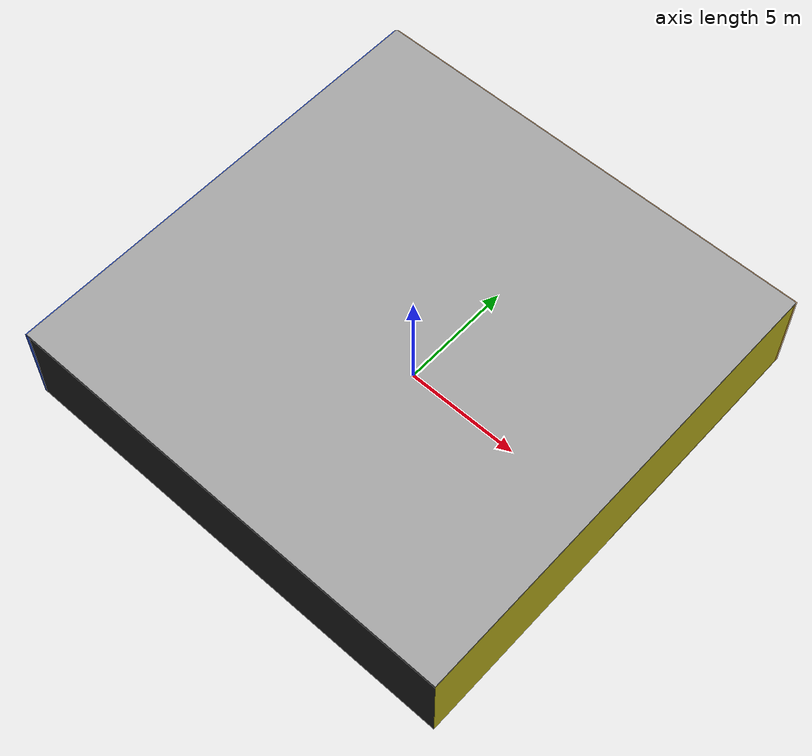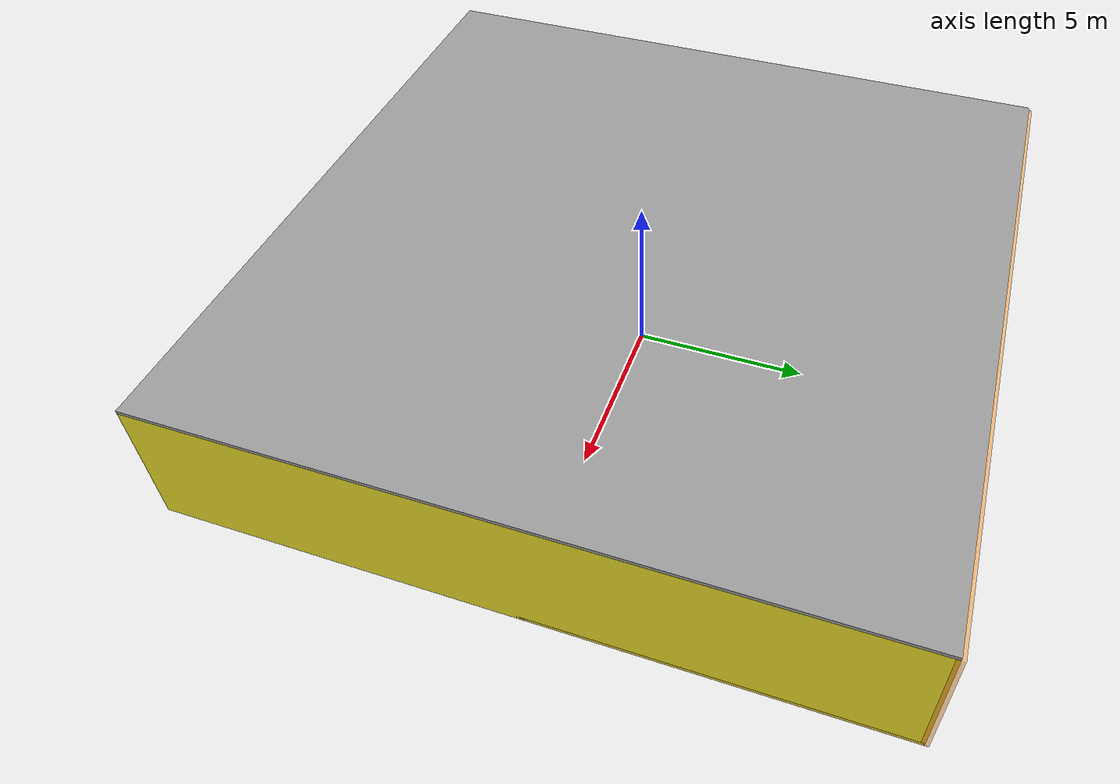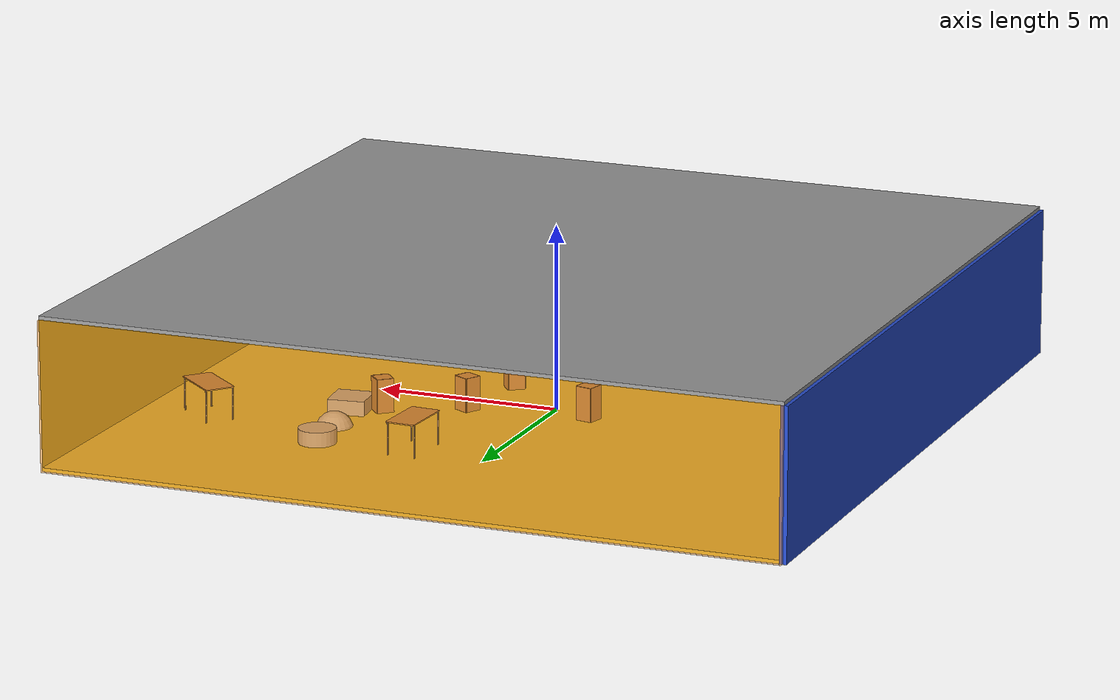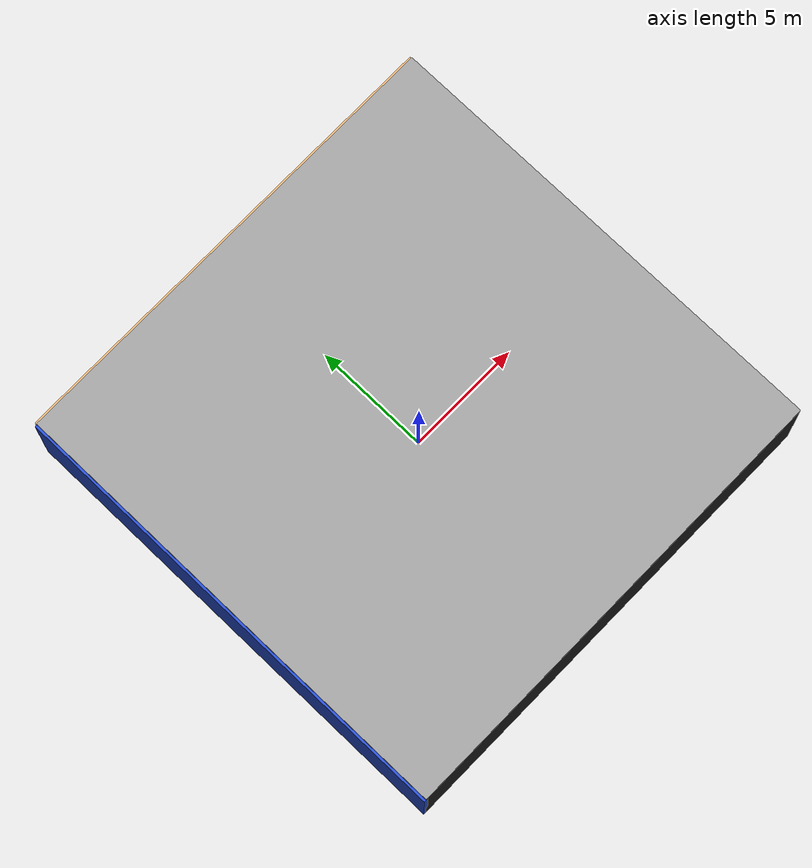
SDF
<sdf version="1.4">
 <world name="default">
  <physics type="ode">
   <max_step_size>0.001</max_step_size>
   <real_time_factor>1</real_time_factor>
   <real_time_update_rate>1000</real_time_update_rate>
   <gravity>0 0 -9.8</gravity>
  </physics>
  <scene><ambient>0.4 0.4 0.4 1</ambient><background>0.7 0.7 0.7 1</background><shadows>1</shadows></scene>
  <model name="Surrounding">
   <static>1</static>
   <link name="Ceiling">
    <collision name="Ceiling_Collision"><geometry><box><size>20 20 0.1</size></box></geometry></collision>
    <visual name="Ceiling_Visual">
     <geometry><box><size>20 20 0.1</size></box></geometry>
     <material>
      <script><uri>file://media/materials/scripts/gazebo.material</uri><name>Gazebo/Grey</name></script>
     </material>
    </visual>
    <pose>0 0 4.05 0 0 0</pose>
   </link>
   <link name="Wall_South">
    <collision name="Wall_South_Collision">
     <geometry><box><size>20 0 4</size></box></geometry>
     <pose>0 0 2 0 -0 0</pose>
    </collision>
    <visual name="Wall_South_Visual">
     <pose>0 0 2 0 -0 0</pose>
     <geometry><box><size>20 0 4</size></box></geometry>
     <material>
      <script><uri>file://media/materials/scripts/gazebo.material</uri><name>Gazebo/FlatBlack</name></script>
     </material>
    </visual>
    <velocity_decay><linear>0</linear><angular>0</angular></velocity_decay>
    <pose>0 -10 0 0 -0 0</pose>
   </link>
   <link name="Wall_East">
    <collision name="Wall_21_Collision">
     <geometry><box><size>20 0 4</size></box></geometry>
     <pose>0 0 2 0 -0 0</pose>
    </collision>
    <visual name="Wall_21_Visual">
     <pose>0 0 2 0 -0 0</pose>
     <geometry><box><size>20 0 4</size></box></geometry>
     <material>
      <script><uri>file://media/materials/scripts/gazebo.material</uri><name>Gazebo/Yellow</name></script>
     </material>
    </visual>
    <velocity_decay><linear>0</linear><angular>0</angular></velocity_decay>
    <pose>10 0 0 0 -0 1.5708</pose>
   </link>
   <link name="Wall_North">
    <collision name="Wall_22_Collision">
     <geometry><box><size>20 0.2 4</size></box></geometry>
     <pose>0 0 2 0 -0 0</pose>
    </collision>
    <visual name="Wall_22_Visual">
     <pose>0 0 2 0 -0 0</pose>
     <geometry><box><size>20 0.2 4</size></box></geometry>
     <material>
      <script>
       <uri>file://media/materials/scripts/gazebo.material</uri>
       <name>Gazebo/OrangeTransparent</name>
      </script>
     </material>
    </visual>
    <velocity_decay><linear>0</linear><angular>0</angular></velocity_decay>
    <pose>0 10 0 0 -0 0</pose>
   </link>
   <link name="Wall_West">
    <collision name="Wall_23_Collision">
     <geometry><box><size>20 0.2 4</size></box></geometry>
     <pose>0 0 2 0 -0 0</pose>
    </collision>
    <visual name="Wall_23_Visual">
     <pose>0 0 2 0 -0 0</pose>
     <geometry><box><size>20 0.2 4</size></box></geometry>
     <material>
      <script><uri>file://media/materials/scripts/gazebo.material</uri><name>Gazebo/BlueLaser</name></script>
     </material>
    </visual>
    <velocity_decay><linear>0</linear><angular>0</angular></velocity_decay>
    <pose>-10 0 0 0 0 -1.5708</pose>
   </link>
   <link name="Ground_link">
    <collision name="collision">
     <pose>0 0 .05 0 -0 0</pose>
     <geometry><box><size>20 20 0.1</size></box></geometry>
    </collision>
    <visual name="visual">
     <pose>0 0 .05 0 -0 0</pose>
     <geometry><box><size>20 20 0.1</size></box></geometry>
     <material>
      <script><uri>file://media/materials/scripts/gazebo.material</uri><name>Gazebo/ZincYellow</name></script>
     </material>
    </visual>
   </link>
   <static>1</static>
  </model>
  <spherical_coordinates>
   <surface_model>EARTH_WGS84</surface_model>
   <latitude_deg>0</latitude_deg>
   <longitude_deg>0</longitude_deg>
   <elevation>0</elevation>
   <heading_deg>0</heading_deg>
  </spherical_coordinates>
  <light name="lightball_0" type="diffuse">
   <diffuse>0.8 0.8 0.8 1</diffuse>
   <specular>0.2 0.2 0.2 1</specular>
   <attenuation>
    <range>100</range>
    <constant>0.7</constant>
    <linear>0.01</linear>
    <quadratic>0.001</quadratic>
   </attenuation>
   <direction>-0.5 0.1 -0.9</direction>
   <pose>1.14034580904 -5.68439702868 0.827543547514 0 0 0</pose>
  </light>
  <light name="lightball_1" type="diffuse">
   <diffuse>0.8 0.8 0.8 1</diffuse>
   <specular>0.2 0.2 0.2 1</specular>
   <attenuation>
    <range>100</range>
    <constant>0.7</constant>
    <linear>0.01</linear>
    <quadratic>0.001</quadratic>
   </attenuation>
   <direction>-0.5 0.1 -0.9</direction>
   <pose>7.08415919906 -5.02468409357 3.22201024661 0 0 0</pose>
  </light>
  <light name="lightball_2" type="diffuse">
   <diffuse>0.8 0.8 0.8 1</diffuse>
   <specular>0.2 0.2 0.2 1</specular>
   <attenuation>
    <range>100</range>
    <constant>0.7</constant>
    <linear>0.01</linear>
    <quadratic>0.001</quadratic>
   </attenuation>
   <direction>-0.5 0.1 -0.9</direction>
   <pose>5.6957027521 -3.41683918997 1.72594837217 0 0 0</pose>
  </light>
  <light name="lightball_3" type="diffuse">
   <diffuse>0.8 0.8 0.8 1</diffuse>
   <specular>0.2 0.2 0.2 1</specular>
   <attenuation>
    <range>100</range>
    <constant>0.7</constant>
    <linear>0.01</linear>
    <quadratic>0.001</quadratic>
   </attenuation>
   <direction>-0.5 0.1 -0.9</direction>
   <pose>-6.88114040532 4.42763566865 1.08671849292 0 0 0</pose>
  </light>
  <light name="lightball_4" type="diffuse">
   <diffuse>0.8 0.8 0.8 1</diffuse>
   <specular>0.2 0.2 0.2 1</specular>
   <attenuation>
    <range>100</range>
    <constant>0.7</constant>
    <linear>0.01</linear>
    <quadratic>0.001</quadratic>
   </attenuation>
   <direction>-0.5 0.1 -0.9</direction>
   <pose>-6.70546045904 -2.3135459751 0.880303778201 0 0 0</pose>
  </light>
  <light name="lightball_5" type="diffuse">
   <diffuse>0.8 0.8 0.8 1</diffuse>
   <specular>0.2 0.2 0.2 1</specular>
   <attenuation>
    <range>100</range>
    <constant>0.7</constant>
    <linear>0.01</linear>
    <quadratic>0.001</quadratic>
   </attenuation>
   <direction>-0.5 0.1 -0.9</direction>
   <pose>-0.0755419132509 -8.0978928976 0.857331484342 0 0 0</pose>
  </light>
  <include><uri>model://cabinet</uri><pose>-1.21652597821 0.767286807804 0 0 0 1.33238432259</pose></include>
  <include><uri>model://cabinet</uri><pose>1.70452564438 -1.22538549169 0 0 0 2.22666172901</pose></include>
  <include><uri>model://cabinet</uri><pose>2.05664410911 1.13049296859 0 0 0 1.07618882387</pose></include>
  <include><uri>model://table</uri><pose>1.91759900357 5.01894707594 0 0 0 1.51749527511</pose></include>
  <include><uri>model://cabinet</uri><pose>4.06171104151 2.08157987991 0 0 0 0.73443723558</pose></include>
  <include>
   <uri>model://textured_shapes</uri>
   <pose>4.65465938847 3.85306759915 0 0 0 0.128470430604</pose>
  </include>
  <include><uri>model://table</uri><pose>8.11299381303 4.15993993637 0 0 0 2.43714831788</pose></include>
 </world>
</sdf>

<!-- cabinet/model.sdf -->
<sdf version="1.5">
  <model name="cabinet">
    <static>true</static>
    <link name="cabinet_bottom_plate">
      <inertial>
        <pose>0 0 -1 0 0 0</pose>
        <inertia>
          <ixx>2.050000</ixx>
          <ixy>0</ixy>
          <ixz>0</ixz>
          <iyy>2.050000</iyy>
          <iyz>0</iyz>
          <izz>2.050000</izz>
        </inertia>
        <mass>25.000000</mass>
      </inertial>
      <collision name="cabinet_bottom_plate_geom">
        <pose>0 0 0.010000 0 0 0</pose>
        <geometry>
          <box>
            <size>0.450000 0.450000 0.020000</size>
          </box>
        </geometry>
      </collision>
      <visual name="cabinet_bottom_plate_geom_visual">
        <pose>0 0 0.010000 0 0 0</pose>
        <geometry>
          <box>
            <size>0.450000 0.450000 0.020000</size>
          </box>
        </geometry>
        <material>
          <script>
            <uri>model://media/materials/scripts/gazebo.material</uri>
            <name>Gazebo/Wood</name>
          </script>
        </material>
      </visual>
      <collision name="cabinet_bottom_plate_geom_cabinet_back_plate">
        <pose>0.235000 0 0.510000 0 0 0</pose>
        <geometry>
          <box>
            <size>0.020000 0.450000 1.020000</size>
          </box>
        </geometry>
      </collision>
      <visual name="cabinet_bottom_plate_geom_cabinet_back_plate_visual">
        <pose>0.235000 0 0.510000 0 0 0</pose>
        <geometry>
          <box>
            <size>0.020000 0.450000 1.020000</size>
          </box>
        </geometry>
        <material>
          <script>
            <uri>model://media/materials/scripts/gazebo.material</uri>
            <name>Gazebo/Wood</name>
          </script>
        </material>
      </visual>
      <collision name="cabinet_bottom_plate_geom_cabinet_left_plate">
        <pose>0 0.235000 0.510000 0 0 0</pose>
        <geometry>
          <box>
            <size>0.450000 0.020000 1.020000</size>
          </box>
        </geometry>
      </collision>
      <visual name="cabinet_bottom_plate_geom_cabinet_left_plate_visual">
        <pose>0 0.235000 0.510000 0 0 0</pose>
        <geometry>
          <box>
            <size>0.450000 0.020000 1.020000</size>
          </box>
        </geometry>
        <material>
          <script>
            <uri>model://media/materials/scripts/gazebo.material</uri>
            <name>Gazebo/Wood</name>
          </script>
        </material>
      </visual>
      <collision name="cabinet_bottom_plate_geom_cabinet_middle_plate">
        <pose>0 0 0.510000 0 0 0</pose>
        <geometry>
          <box>
            <size>0.450000 0.450000 0.020000</size>
          </box>
        </geometry>
      </collision>
      <visual name="cabinet_bottom_plate_geom_cabinet_middle_plate_visual">
        <pose>0 0 0.510000 0 0 0</pose>
        <geometry>
          <box>
            <size>0.450000 0.450000 0.020000</size>
          </box>
        </geometry>
        <material>
          <script>
            <uri>model://media/materials/scripts/gazebo.material</uri>
            <name>Gazebo/Wood</name>
          </script>
        </material>
      </visual>
      <collision name="cabinet_bottom_plate_geom_cabinet_right_plate">
        <pose>0 -0.235000 0.510000 0 0 0</pose>
        <geometry>
          <box>
            <size>0.450000 0.020000 1.020000</size>
          </box>
        </geometry>
      </collision>
      <visual name="cabinet_bottom_plate_geom_cabinet_right_plate_visual">
        <pose>0 -0.235000 0.510000 0 0 0</pose>
        <geometry>
          <box>
            <size>0.450000 0.020000 1.020000</size>
          </box>
        </geometry>
        <material>
          <script>
            <uri>model://media/materials/scripts/gazebo.material</uri>
            <name>Gazebo/Wood</name>
          </script>
        </material>
      </visual>
      <collision name="cabinet_bottom_plate_geom_cabinet_top_plate">
        <pose>0 0 1.010000 0 0 0</pose>
        <geometry>
          <box>
            <size>0.450000 0.450000 0.020000</size>
          </box>
        </geometry>
      </collision>
      <visual name="cabinet_bottom_plate_geom_cabinet_top_plate_visual">
        <pose>0 0 1.010000 0 0 0</pose>
        <geometry>
          <box>
            <size>0.450000 0.450000 0.020000</size>
          </box>
        </geometry>
        <material>
          <script>
            <uri>model://media/materials/scripts/gazebo.material</uri>
            <name>Gazebo/Wood</name>
          </script>
        </material>
      </visual>
    </link>
  </model>
</sdf>

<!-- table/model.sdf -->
<sdf version="1.5">
  <model name="table">
    <static>true</static>
    <link name="link">
      <collision name="surface">
        <pose>0 0 1.0 0 0 0</pose>
        <geometry>
          <box>
            <size>1.5 0.8 0.03</size>
          </box>
        </geometry>
        <surface>
          <friction>
            <ode>
              <mu>0.6</mu>
              <mu2>0.6</mu2>
            </ode>
          </friction>
        </surface>
      </collision>
      <visual name="visual1">
        <pose>0 0 1.0 0 0 0</pose>
        <geometry>
          <box>
            <size>1.5 0.8 0.03</size>
          </box>
        </geometry>
        <material>
          <script>
            <uri>model://media/materials/scripts/gazebo.material</uri>
            <name>Gazebo/Wood</name>
          </script>
        </material>
      </visual>
      <collision name="front_left_leg">
        <pose>0.68 0.38 0.5 0 0 0</pose>
        <geometry>
          <cylinder>
            <radius>0.02</radius>
            <length>1.0</length>
          </cylinder>
        </geometry>
      </collision>
      <visual name="front_left_leg">
        <pose>0.68 0.38 0.5 0 0 0</pose>
        <geometry>
          <cylinder>
            <radius>0.02</radius>
            <length>1.0</length>
          </cylinder>
        </geometry>
        <material>
          <script>
            <uri>model://media/materials/scripts/gazebo.material</uri>
            <name>Gazebo/Grey</name>
          </script>
        </material>
      </visual>
      <collision name="front_right_leg">
        <pose>0.68 -0.38 0.5 0 0 0</pose>
        <geometry>
          <cylinder>
            <radius>0.02</radius>
            <length>1.0</length>
          </cylinder>
        </geometry>
      </collision>
      <visual name="front_right_leg">
        <pose>0.68 -0.38 0.5 0 0 0</pose>
        <geometry>
          <cylinder>
            <radius>0.02</radius>
            <length>1.0</length>
          </cylinder>
        </geometry>
        <material>
          <script>
            <uri>model://media/materials/scripts/gazebo.material</uri>
            <name>Gazebo/Grey</name>
          </script>
        </material>
      </visual>
      <collision name="back_right_leg">
        <pose>-0.68 -0.38 0.5 0 0 0</pose>
        <geometry>
          <cylinder>
            <radius>0.02</radius>
            <length>1.0</length>
          </cylinder>
        </geometry>
      </collision>
      <visual name="back_right_leg">
        <pose>-0.68 -0.38 0.5 0 0 0</pose>
        <geometry>
          <cylinder>
            <radius>0.02</radius>
            <length>1.0</length>
          </cylinder>
        </geometry>
        <material>
          <script>
            <uri>model://media/materials/scripts/gazebo.material</uri>
            <name>Gazebo/Grey</name>
          </script>
        </material>
      </visual>
      <collision name="back_left_leg">
        <pose>-0.68 0.38 0.5 0 0 0</pose>
        <geometry>
          <cylinder>
            <radius>0.02</radius>
            <length>1.0</length>
          </cylinder>
        </geometry>
      </collision>
      <visual name="back_left_leg">
        <pose>-0.68 0.38 0.5 0 0 0</pose>
        <geometry>
          <cylinder>
            <radius>0.02</radius>
            <length>1.0</length>
          </cylinder>
        </geometry>
        <material>
          <script>
            <uri>model://media/materials/scripts/gazebo.material</uri>
            <name>Gazebo/Grey</name>
          </script>
        </material>
      </visual>
    </link>
  </model>
</sdf>

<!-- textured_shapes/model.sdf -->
<sdf version="1.6">
  <model name="textured_shapes">
    <pose>0 0 0.5 0 0 0</pose>
    <link name="box">
      <pose>0 -1.5 0 0 0 0</pose>
      <collision name="collision">
        <geometry>
          <box>
            <size>1 1 1</size>
          </box>
        </geometry>
      </collision>
      <visual name="visual">
        <geometry>
          <box>
            <size>1 1 1</size>
          </box>
        </geometry>
        <material>
          <script>
            <uri>model://../model_source/models/textured_shapes/materials/scripts</uri>
            <uri>model://../model_source/models/textured_shapes/materials/textures</uri>
            <name>TexturedShape/Squares</name>
          </script>
        </material>
      </visual>
    </link>
    <link name="sphere">
      <collision name="collision">
        <geometry>
          <sphere>
            <radius>0.5</radius>
          </sphere>
        </geometry>
      </collision>
      <visual name="visual">
        <geometry>
          <sphere>
            <radius>0.5</radius>
          </sphere>
        </geometry>
        <material>
          <script>
            <uri>model://../model_source/models/textured_shapes/materials/scripts</uri>
            <uri>model://../model_source/models/textured_shapes/materials/textures</uri>
            <name>TexturedShape/Squares</name>
          </script>
        </material>
      </visual>
    </link>
    <link name="cylinder">
      <pose>0 1.5 0 0 0 0</pose>
      <collision name="collision">
        <geometry>
          <cylinder>
            <radius>0.5</radius>
            <length>1</length>
          </cylinder>
        </geometry>
      </collision>
      <visual name="visual">
        <geometry>
          <cylinder>
            <radius>0.5</radius>
            <length>1</length>
          </cylinder>
        </geometry>
        <material>
          <script>
            <uri>model://../model_source/models/textured_shapes/materials/scripts</uri>
            <uri>model://../model_source/models/textured_shapes/materials/textures</uri>
            <name>TexturedShape/Squares</name>
          </script>
        </material>
      </visual>
    </link>
  </model>
</sdf>
